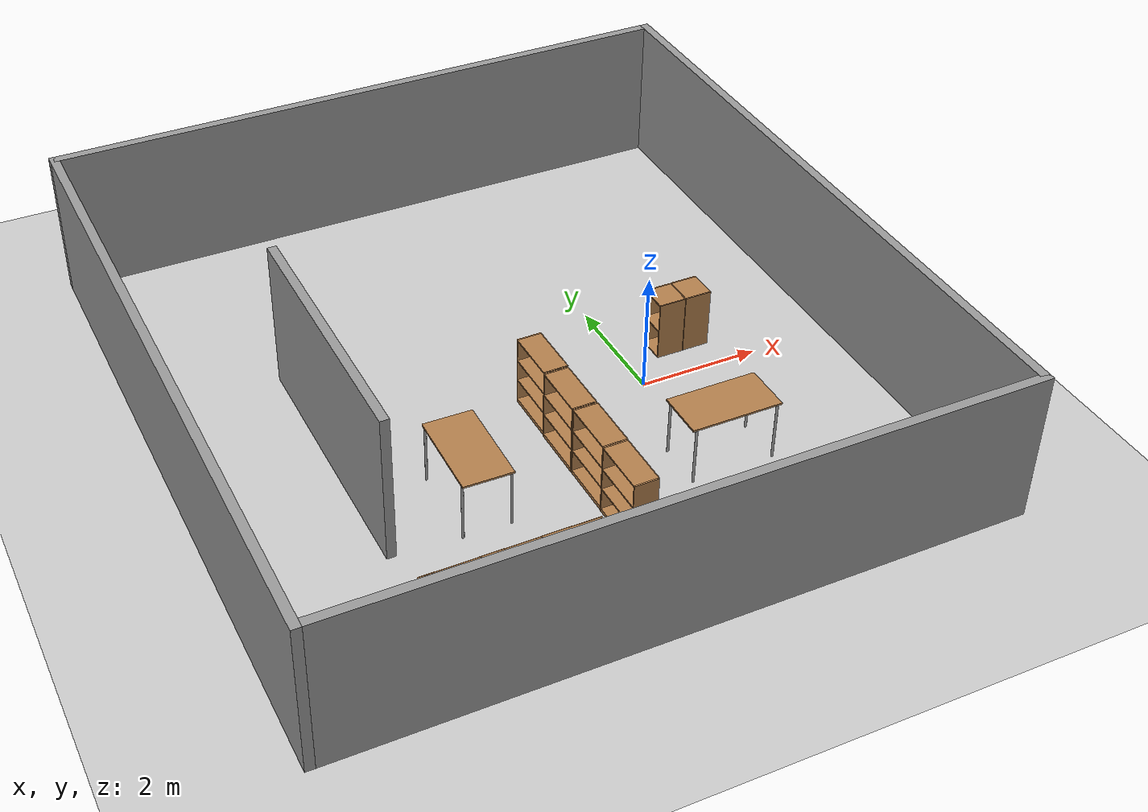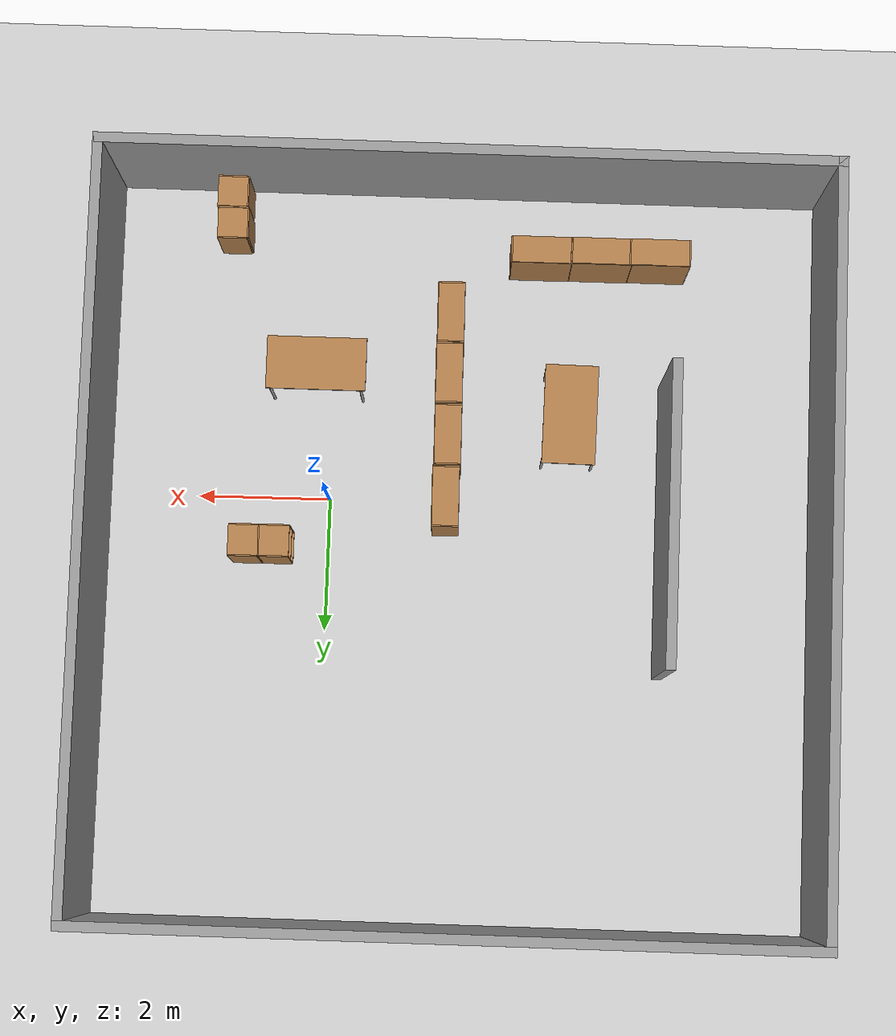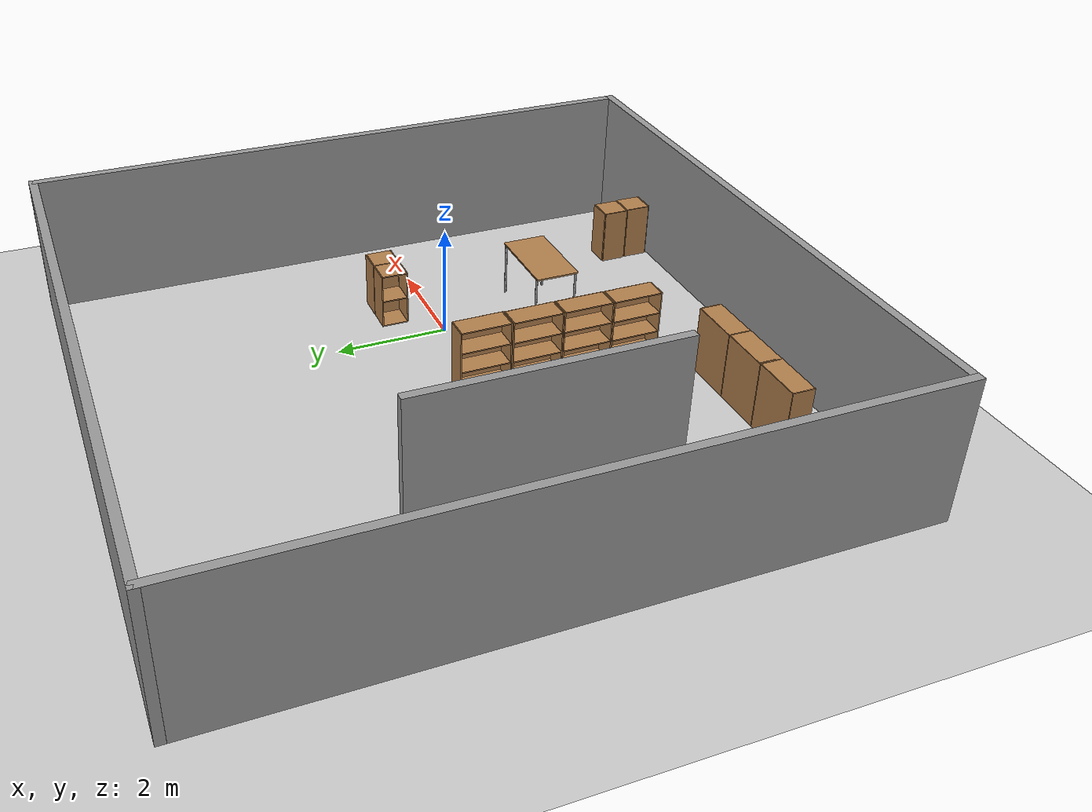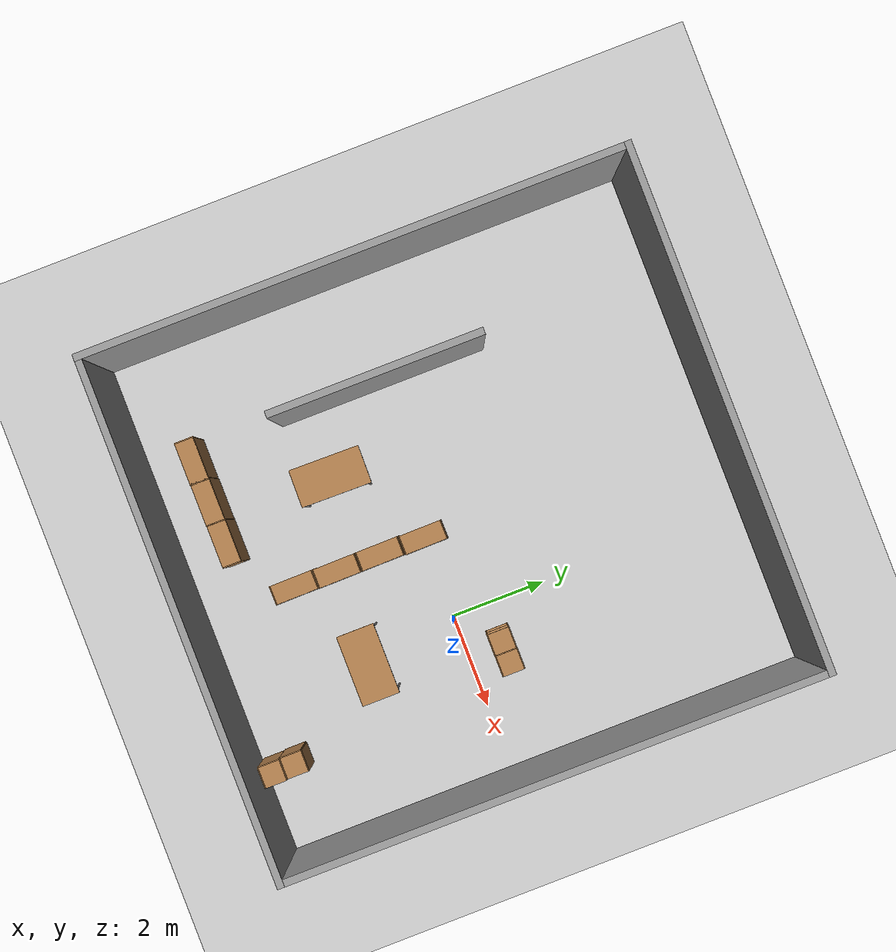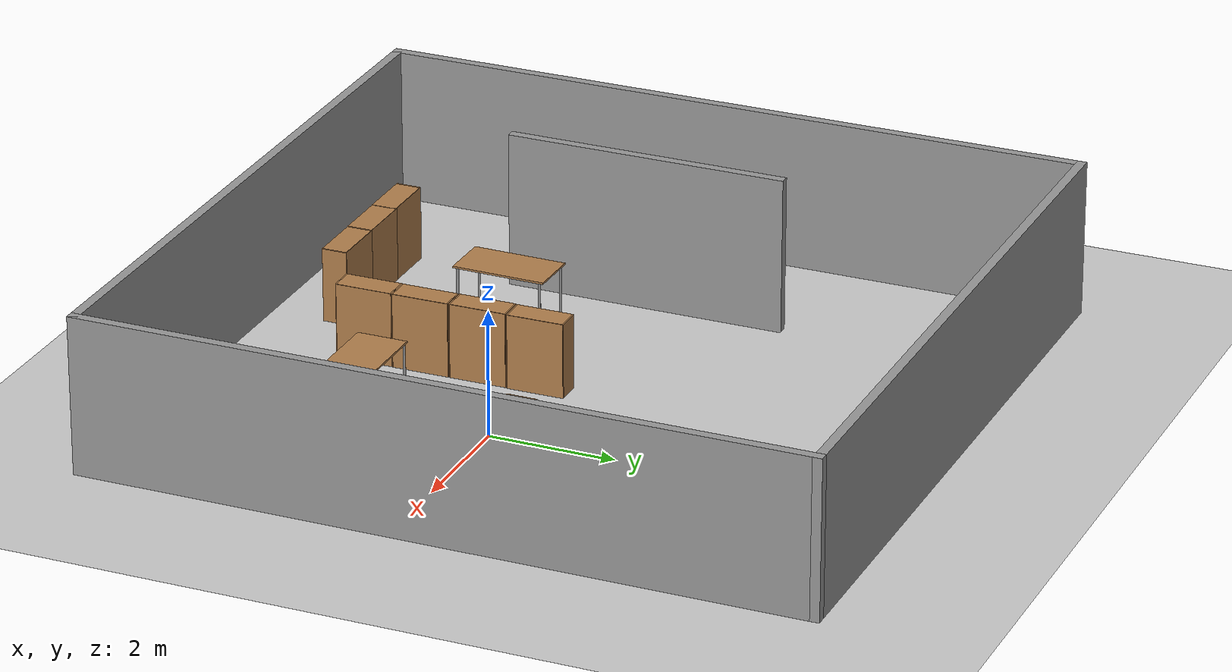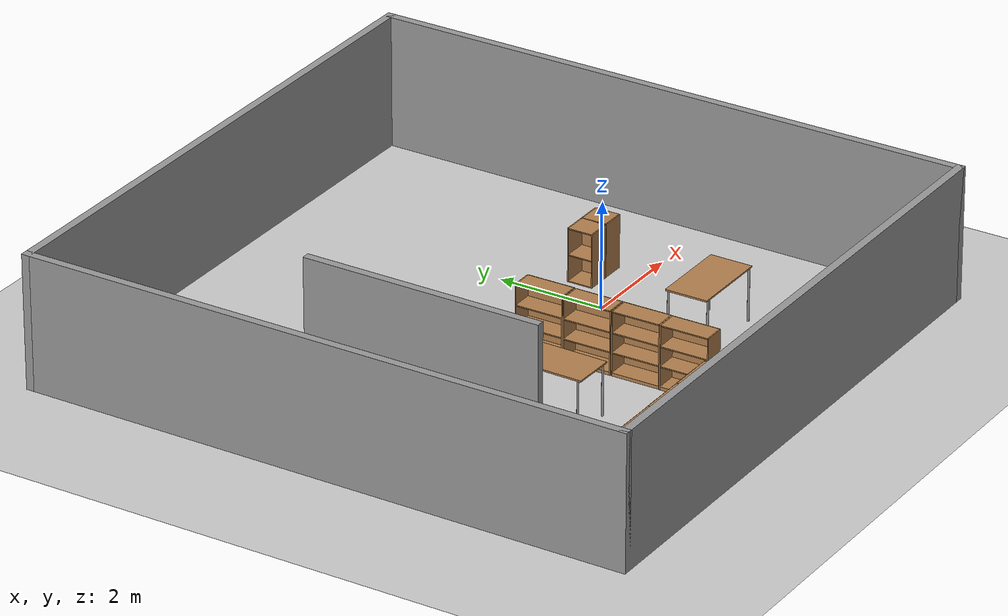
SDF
<sdf version="1.7">
 <world name="default">
  <model name="ground_plane">
   <static>1</static>
   <link name="link">
    <collision name="collision">
     <geometry><plane><normal>0 0 1</normal><size>100 100</size></plane></geometry>
     <surface>
      <contact><collide_bitmask>65535</collide_bitmask></contact>
      <friction><ode><mu>100</mu><mu2>50</mu2></ode></friction>
     </surface>
    </collision>
    <visual name="visual">
     <cast_shadows>0</cast_shadows>
     <geometry><plane><normal>0 0 1</normal><size>100 100</size></plane></geometry>
     <material>
      <script><uri>file://media/materials/scripts/gazebo.material</uri><name>Gazebo/Grey</name></script>
     </material>
    </visual>
   </link>
  </model>
  <model name="BOUNDARY">
   <pose>-1.9849 0.78024 0 0 -0 0</pose>
   <link name="Wall_10">
    <collision name="Wall_10_Collision">
     <geometry><box><size>11 0.15 2.5</size></box></geometry>
     <pose>0 0 1.25 0 -0 0</pose>
    </collision>
    <visual name="Wall_10_Visual">
     <pose>0 0 1.25 0 -0 0</pose>
     <geometry><box><size>11 0.15 2.5</size></box></geometry>
     <material>
      <script><uri>file://media/materials/scripts/gazebo.material</uri><name>Gazebo/Grey</name></script>
      <ambient>1 1 1 1</ambient>
     </material>
     <meta><layer>0</layer></meta>
    </visual>
    <pose>-0 5.675 0 0 -0 3.14159</pose>
   </link>
   <link name="Wall_7">
    <collision name="Wall_7_Collision">
     <geometry><box><size>11.5 0.15 2.5</size></box></geometry>
     <pose>0 0 1.25 0 -0 0</pose>
    </collision>
    <visual name="Wall_7_Visual">
     <pose>0 0 1.25 0 -0 0</pose>
     <geometry><box><size>11.5 0.15 2.5</size></box></geometry>
     <material>
      <script><uri>file://media/materials/scripts/gazebo.material</uri><name>Gazebo/Grey</name></script>
      <ambient>1 1 1 1</ambient>
     </material>
     <meta><layer>0</layer></meta>
    </visual>
    <pose>-5.425 -0 0 0 -0 -1.5708</pose>
   </link>
   <link name="Wall_8">
    <collision name="Wall_8_Collision">
     <geometry><box><size>11 0.15 2.5</size></box></geometry>
     <pose>0 0 1.25 0 -0 0</pose>
    </collision>
    <visual name="Wall_8_Visual">
     <pose>0 0 1.25 0 -0 0</pose>
     <geometry><box><size>11 0.15 2.5</size></box></geometry>
     <material>
      <script><uri>file://media/materials/scripts/gazebo.material</uri><name>Gazebo/Grey</name></script>
      <ambient>1 1 1 1</ambient>
     </material>
     <meta><layer>0</layer></meta>
    </visual>
    <pose>-0 -5.675 0 0 -0 0</pose>
   </link>
   <link name="Wall_9">
    <collision name="Wall_9_Collision">
     <geometry><box><size>11.5 0.15 2.5</size></box></geometry>
     <pose>0 0 1.25 0 -0 0</pose>
    </collision>
    <visual name="Wall_9_Visual">
     <pose>0 0 1.25 0 -0 0</pose>
     <geometry><box><size>11.5 0.15 2.5</size></box></geometry>
     <material>
      <script><uri>file://media/materials/scripts/gazebo.material</uri><name>Gazebo/Grey</name></script>
      <ambient>1 1 1 1</ambient>
     </material>
     <meta><layer>0</layer></meta>
    </visual>
    <pose>5.425 -0 0 0 -0 1.5708</pose>
   </link>
   <static>1</static>
  </model>
  <model name="cabinet_1_clone_1">
   <static>1</static>
   <link name="cabinet_bottom_plate">
    <inertial>
     <pose>0 0 -1 0 -0 0</pose>
     <inertia><ixx>2.05</ixx><ixy>0</ixy><ixz>0</ixz><iyy>2.05</iyy><iyz>0</iyz><izz>2.05</izz></inertia>
     <mass>25</mass>
    </inertial>
    <collision name="cabinet_bottom_plate_geom">
     <pose>0 0 0.01 0 -0 0</pose>
     <geometry><box><size>0.45 0.45 0.02</size></box></geometry>
    </collision>
    <visual name="cabinet_bottom_plate_geom_visual">
     <pose>0 0 0.01 0 -0 0</pose>
     <geometry><box><size>0.45 0.45 0.02</size></box></geometry>
     <material>
      <script><uri>file://media/materials/scripts/gazebo.material</uri><name>Gazebo/Wood</name></script>
     </material>
    </visual>
    <collision name="cabinet_bottom_plate_geom_cabinet_back_plate">
     <pose>0.235 0 0.51 0 -0 0</pose>
     <geometry><box><size>0.02 0.45 1.02</size></box></geometry>
    </collision>
    <visual name="cabinet_bottom_plate_geom_cabinet_back_plate_visual">
     <pose>0.235 0 0.51 0 -0 0</pose>
     <geometry><box><size>0.02 0.45 1.02</size></box></geometry>
     <material>
      <script><uri>file://media/materials/scripts/gazebo.material</uri><name>Gazebo/Wood</name></script>
     </material>
    </visual>
    <collision name="cabinet_bottom_plate_geom_cabinet_left_plate">
     <pose>0 0.235 0.51 0 -0 0</pose>
     <geometry><box><size>0.45 0.02 1.02</size></box></geometry>
    </collision>
    <visual name="cabinet_bottom_plate_geom_cabinet_left_plate_visual">
     <pose>0 0.235 0.51 0 -0 0</pose>
     <geometry><box><size>0.45 0.02 1.02</size></box></geometry>
     <material>
      <script><uri>file://media/materials/scripts/gazebo.material</uri><name>Gazebo/Wood</name></script>
     </material>
    </visual>
    <collision name="cabinet_bottom_plate_geom_cabinet_middle_plate">
     <pose>0 0 0.51 0 -0 0</pose>
     <geometry><box><size>0.45 0.45 0.02</size></box></geometry>
    </collision>
    <visual name="cabinet_bottom_plate_geom_cabinet_middle_plate_visual">
     <pose>0 0 0.51 0 -0 0</pose>
     <geometry><box><size>0.45 0.45 0.02</size></box></geometry>
     <material>
      <script><uri>file://media/materials/scripts/gazebo.material</uri><name>Gazebo/Wood</name></script>
     </material>
    </visual>
    <collision name="cabinet_bottom_plate_geom_cabinet_right_plate">
     <pose>0 -0.235 0.51 0 -0 0</pose>
     <geometry><box><size>0.45 0.02 1.02</size></box></geometry>
    </collision>
    <visual name="cabinet_bottom_plate_geom_cabinet_right_plate_visual">
     <pose>0 -0.235 0.51 0 -0 0</pose>
     <geometry><box><size>0.45 0.02 1.02</size></box></geometry>
     <material>
      <script><uri>file://media/materials/scripts/gazebo.material</uri><name>Gazebo/Wood</name></script>
     </material>
    </visual>
    <collision name="cabinet_bottom_plate_geom_cabinet_top_plate">
     <pose>0 0 1.01 0 -0 0</pose>
     <geometry><box><size>0.45 0.45 0.02</size></box></geometry>
    </collision>
    <visual name="cabinet_bottom_plate_geom_cabinet_top_plate_visual">
     <pose>0 0 1.01 0 -0 0</pose>
     <geometry><box><size>0.45 0.45 0.02</size></box></geometry>
     <material>
      <script><uri>file://media/materials/scripts/gazebo.material</uri><name>Gazebo/Wood</name></script>
     </material>
    </visual>
   </link>
   <pose>0.754546 0.758666 0 0 -0 0</pose>
  </model>
  <model name="cabinet_clone_2_clone_clone_0">
   <static>1</static>
   <link name="cabinet_bottom_plate">
    <inertial>
     <pose>0 0 -1 0 -0 0</pose>
     <inertia><ixx>2.05</ixx><ixy>0</ixy><ixz>0</ixz><iyy>2.05</iyy><iyz>0</iyz><izz>2.05</izz></inertia>
     <mass>25</mass>
    </inertial>
    <collision name="cabinet_bottom_plate_geom">
     <pose>0 0 0.01 0 -0 0</pose>
     <geometry><box><size>0.45 0.45 0.02</size></box></geometry>
    </collision>
    <visual name="cabinet_bottom_plate_geom_visual">
     <pose>0 0 0.01 0 -0 0</pose>
     <geometry><box><size>0.45 0.45 0.02</size></box></geometry>
     <material>
      <script><uri>file://media/materials/scripts/gazebo.material</uri><name>Gazebo/Wood</name></script>
     </material>
    </visual>
    <collision name="cabinet_bottom_plate_geom_cabinet_back_plate">
     <pose>0.235 0 0.51 0 -0 0</pose>
     <geometry><box><size>0.02 0.45 1.02</size></box></geometry>
    </collision>
    <visual name="cabinet_bottom_plate_geom_cabinet_back_plate_visual">
     <pose>0.235 0 0.51 0 -0 0</pose>
     <geometry><box><size>0.02 0.45 1.02</size></box></geometry>
     <material>
      <script><uri>file://media/materials/scripts/gazebo.material</uri><name>Gazebo/Wood</name></script>
     </material>
    </visual>
    <collision name="cabinet_bottom_plate_geom_cabinet_left_plate">
     <pose>0 0.235 0.51 0 -0 0</pose>
     <geometry><box><size>0.45 0.02 1.02</size></box></geometry>
    </collision>
    <visual name="cabinet_bottom_plate_geom_cabinet_left_plate_visual">
     <pose>0 0.235 0.51 0 -0 0</pose>
     <geometry><box><size>0.45 0.02 1.02</size></box></geometry>
     <material>
      <script><uri>file://media/materials/scripts/gazebo.material</uri><name>Gazebo/Wood</name></script>
     </material>
    </visual>
    <collision name="cabinet_bottom_plate_geom_cabinet_middle_plate">
     <pose>0 0 0.51 0 -0 0</pose>
     <geometry><box><size>0.45 0.45 0.02</size></box></geometry>
    </collision>
    <visual name="cabinet_bottom_plate_geom_cabinet_middle_plate_visual">
     <pose>0 0 0.51 0 -0 0</pose>
     <geometry><box><size>0.45 0.45 0.02</size></box></geometry>
     <material>
      <script><uri>file://media/materials/scripts/gazebo.material</uri><name>Gazebo/Wood</name></script>
     </material>
    </visual>
    <collision name="cabinet_bottom_plate_geom_cabinet_right_plate">
     <pose>0 -0.235 0.51 0 -0 0</pose>
     <geometry><box><size>0.45 0.02 1.02</size></box></geometry>
    </collision>
    <visual name="cabinet_bottom_plate_geom_cabinet_right_plate_visual">
     <pose>0 -0.235 0.51 0 -0 0</pose>
     <geometry><box><size>0.45 0.02 1.02</size></box></geometry>
     <material>
      <script><uri>file://media/materials/scripts/gazebo.material</uri><name>Gazebo/Wood</name></script>
     </material>
    </visual>
    <collision name="cabinet_bottom_plate_geom_cabinet_top_plate">
     <pose>0 0 1.01 0 -0 0</pose>
     <geometry><box><size>0.45 0.45 0.02</size></box></geometry>
    </collision>
    <visual name="cabinet_bottom_plate_geom_cabinet_top_plate_visual">
     <pose>0 0 1.01 0 -0 0</pose>
     <geometry><box><size>0.45 0.45 0.02</size></box></geometry>
     <material>
      <script><uri>file://media/materials/scripts/gazebo.material</uri><name>Gazebo/Wood</name></script>
     </material>
    </visual>
   </link>
   <pose>1.21855 0.762349 0 0 -0 3.14114</pose>
  </model>
  <model name="Wall1">
   <pose>-2.57259 0.335098 0 0 -0 0</pose>
   <link name="Wall_7">
    <collision name="Wall_7_Collision">
     <geometry><box><size>4.5 0.15 2.5</size></box></geometry>
     <pose>0 0 1.25 0 -0 0</pose>
    </collision>
    <visual name="Wall_7_Visual">
     <pose>0 0 1.25 0 -0 0</pose>
     <geometry><box><size>4.5 0.15 2.5</size></box></geometry>
     <material>
      <script><uri>file://media/materials/scripts/gazebo.material</uri><name>Gazebo/Grey</name></script>
      <ambient>1 1 1 1</ambient>
     </material>
     <meta><layer>0</layer></meta>
    </visual>
    <pose>-2.49759 0 0 0 -0 -1.5708</pose>
   </link>
   <static>1</static>
  </model>
  <model name="bookshelf_clone_6">
   <static>1</static>
   <link name="link">
    <inertial><mass>1</mass></inertial>
    <collision name="back">
     <pose>0 0.005 0.6 0 -0 0</pose>
     <geometry><box><size>0.9 0.01 1.2</size></box></geometry>
    </collision>
    <visual name="visual1">
     <pose>0 0.005 0.6 0 -0 0</pose>
     <geometry><box><size>0.9 0.01 1.2</size></box></geometry>
     <material>
      <script><uri>file://media/materials/scripts/gazebo.material</uri><name>Gazebo/Wood</name></script>
     </material>
    </visual>
    <collision name="left_side">
     <pose>0.45 -0.195 0.6 0 -0 0</pose>
     <geometry><box><size>0.02 0.4 1.2</size></box></geometry>
    </collision>
    <visual name="visual2">
     <pose>0.45 -0.195 0.6 0 -0 0</pose>
     <geometry><box><size>0.02 0.4 1.2</size></box></geometry>
     <material>
      <script><uri>file://media/materials/scripts/gazebo.material</uri><name>Gazebo/Wood</name></script>
     </material>
    </visual>
    <collision name="right_side">
     <pose>-0.45 -0.195 0.6 0 -0 0</pose>
     <geometry><box><size>0.02 0.4 1.2</size></box></geometry>
    </collision>
    <visual name="visual3">
     <pose>-0.45 -0.195 0.6 0 -0 0</pose>
     <geometry><box><size>0.02 0.4 1.2</size></box></geometry>
     <material>
      <script><uri>file://media/materials/scripts/gazebo.material</uri><name>Gazebo/Wood</name></script>
     </material>
    </visual>
    <collision name="bottom">
     <pose>0 -0.195 0.03 0 -0 0</pose>
     <geometry><box><size>0.88 0.4 0.06</size></box></geometry>
    </collision>
    <visual name="visual4">
     <pose>0 -0.195 0.03 0 -0 0</pose>
     <geometry><box><size>0.88 0.4 0.06</size></box></geometry>
     <material>
      <script><uri>file://media/materials/scripts/gazebo.material</uri><name>Gazebo/Wood</name></script>
     </material>
    </visual>
    <collision name="top">
     <pose>0 -0.195 1.19 0 -0 0</pose>
     <geometry><box><size>0.88 0.4 0.02</size></box></geometry>
    </collision>
    <visual name="visual5">
     <pose>0 -0.195 1.19 0 -0 0</pose>
     <geometry><box><size>0.88 0.4 0.02</size></box></geometry>
     <material>
      <script><uri>file://media/materials/scripts/gazebo.material</uri><name>Gazebo/Wood</name></script>
     </material>
    </visual>
    <collision name="low_shelf">
     <pose>0 -0.195 0.43 0 -0 0</pose>
     <geometry><box><size>0.88 0.4 0.02</size></box></geometry>
    </collision>
    <visual name="visual6">
     <pose>0 -0.195 0.43 0 -0 0</pose>
     <geometry><box><size>0.88 0.4 0.02</size></box></geometry>
     <material>
      <script><uri>file://media/materials/scripts/gazebo.material</uri><name>Gazebo/Wood</name></script>
     </material>
    </visual>
    <collision name="high_shelf">
     <pose>0 -0.195 0.8 0 -0 0</pose>
     <geometry><box><size>0.88 0.4 0.02</size></box></geometry>
    </collision>
    <visual name="visual7">
     <pose>0 -0.195 0.8 0 -0 0</pose>
     <geometry><box><size>0.88 0.4 0.02</size></box></geometry>
     <material>
      <script><uri>file://media/materials/scripts/gazebo.material</uri><name>Gazebo/Wood</name></script>
     </material>
    </visual>
   </link>
   <pose>-1.5862 0.029646 0 0 0 -1.56142</pose>
  </model>
  <model name="bookshelf_clone_6_clone">
   <static>1</static>
   <link name="link">
    <inertial><mass>1</mass></inertial>
    <collision name="back">
     <pose>0 0.005 0.6 0 -0 0</pose>
     <geometry><box><size>0.9 0.01 1.2</size></box></geometry>
    </collision>
    <visual name="visual1">
     <pose>0 0.005 0.6 0 -0 0</pose>
     <geometry><box><size>0.9 0.01 1.2</size></box></geometry>
     <material>
      <script><uri>file://media/materials/scripts/gazebo.material</uri><name>Gazebo/Wood</name></script>
     </material>
    </visual>
    <collision name="left_side">
     <pose>0.45 -0.195 0.6 0 -0 0</pose>
     <geometry><box><size>0.02 0.4 1.2</size></box></geometry>
    </collision>
    <visual name="visual2">
     <pose>0.45 -0.195 0.6 0 -0 0</pose>
     <geometry><box><size>0.02 0.4 1.2</size></box></geometry>
     <material>
      <script><uri>file://media/materials/scripts/gazebo.material</uri><name>Gazebo/Wood</name></script>
     </material>
    </visual>
    <collision name="right_side">
     <pose>-0.45 -0.195 0.6 0 -0 0</pose>
     <geometry><box><size>0.02 0.4 1.2</size></box></geometry>
    </collision>
    <visual name="visual3">
     <pose>-0.45 -0.195 0.6 0 -0 0</pose>
     <geometry><box><size>0.02 0.4 1.2</size></box></geometry>
     <material>
      <script><uri>file://media/materials/scripts/gazebo.material</uri><name>Gazebo/Wood</name></script>
     </material>
    </visual>
    <collision name="bottom">
     <pose>0 -0.195 0.03 0 -0 0</pose>
     <geometry><box><size>0.88 0.4 0.06</size></box></geometry>
    </collision>
    <visual name="visual4">
     <pose>0 -0.195 0.03 0 -0 0</pose>
     <geometry><box><size>0.88 0.4 0.06</size></box></geometry>
     <material>
      <script><uri>file://media/materials/scripts/gazebo.material</uri><name>Gazebo/Wood</name></script>
     </material>
    </visual>
    <collision name="top">
     <pose>0 -0.195 1.19 0 -0 0</pose>
     <geometry><box><size>0.88 0.4 0.02</size></box></geometry>
    </collision>
    <visual name="visual5">
     <pose>0 -0.195 1.19 0 -0 0</pose>
     <geometry><box><size>0.88 0.4 0.02</size></box></geometry>
     <material>
      <script><uri>file://media/materials/scripts/gazebo.material</uri><name>Gazebo/Wood</name></script>
     </material>
    </visual>
    <collision name="low_shelf">
     <pose>0 -0.195 0.43 0 -0 0</pose>
     <geometry><box><size>0.88 0.4 0.02</size></box></geometry>
    </collision>
    <visual name="visual6">
     <pose>0 -0.195 0.43 0 -0 0</pose>
     <geometry><box><size>0.88 0.4 0.02</size></box></geometry>
     <material>
      <script><uri>file://media/materials/scripts/gazebo.material</uri><name>Gazebo/Wood</name></script>
     </material>
    </visual>
    <collision name="high_shelf">
     <pose>0 -0.195 0.8 0 -0 0</pose>
     <geometry><box><size>0.88 0.4 0.02</size></box></geometry>
    </collision>
    <visual name="visual7">
     <pose>0 -0.195 0.8 0 -0 0</pose>
     <geometry><box><size>0.88 0.4 0.02</size></box></geometry>
     <material>
      <script><uri>file://media/materials/scripts/gazebo.material</uri><name>Gazebo/Wood</name></script>
     </material>
    </visual>
   </link>
   <pose>-1.59056 -0.903487 0 0 0 -1.56142</pose>
  </model>
  <model name="bookshelf_clone_6_clone_0">
   <static>1</static>
   <link name="link">
    <inertial><mass>1</mass></inertial>
    <collision name="back">
     <pose>0 0.005 0.6 0 -0 0</pose>
     <geometry><box><size>0.9 0.01 1.2</size></box></geometry>
    </collision>
    <visual name="visual1">
     <pose>0 0.005 0.6 0 -0 0</pose>
     <geometry><box><size>0.9 0.01 1.2</size></box></geometry>
     <material>
      <script><uri>file://media/materials/scripts/gazebo.material</uri><name>Gazebo/Wood</name></script>
     </material>
    </visual>
    <collision name="left_side">
     <pose>0.45 -0.195 0.6 0 -0 0</pose>
     <geometry><box><size>0.02 0.4 1.2</size></box></geometry>
    </collision>
    <visual name="visual2">
     <pose>0.45 -0.195 0.6 0 -0 0</pose>
     <geometry><box><size>0.02 0.4 1.2</size></box></geometry>
     <material>
      <script><uri>file://media/materials/scripts/gazebo.material</uri><name>Gazebo/Wood</name></script>
     </material>
    </visual>
    <collision name="right_side">
     <pose>-0.45 -0.195 0.6 0 -0 0</pose>
     <geometry><box><size>0.02 0.4 1.2</size></box></geometry>
    </collision>
    <visual name="visual3">
     <pose>-0.45 -0.195 0.6 0 -0 0</pose>
     <geometry><box><size>0.02 0.4 1.2</size></box></geometry>
     <material>
      <script><uri>file://media/materials/scripts/gazebo.material</uri><name>Gazebo/Wood</name></script>
     </material>
    </visual>
    <collision name="bottom">
     <pose>0 -0.195 0.03 0 -0 0</pose>
     <geometry><box><size>0.88 0.4 0.06</size></box></geometry>
    </collision>
    <visual name="visual4">
     <pose>0 -0.195 0.03 0 -0 0</pose>
     <geometry><box><size>0.88 0.4 0.06</size></box></geometry>
     <material>
      <script><uri>file://media/materials/scripts/gazebo.material</uri><name>Gazebo/Wood</name></script>
     </material>
    </visual>
    <collision name="top">
     <pose>0 -0.195 1.19 0 -0 0</pose>
     <geometry><box><size>0.88 0.4 0.02</size></box></geometry>
    </collision>
    <visual name="visual5">
     <pose>0 -0.195 1.19 0 -0 0</pose>
     <geometry><box><size>0.88 0.4 0.02</size></box></geometry>
     <material>
      <script><uri>file://media/materials/scripts/gazebo.material</uri><name>Gazebo/Wood</name></script>
     </material>
    </visual>
    <collision name="low_shelf">
     <pose>0 -0.195 0.43 0 -0 0</pose>
     <geometry><box><size>0.88 0.4 0.02</size></box></geometry>
    </collision>
    <visual name="visual6">
     <pose>0 -0.195 0.43 0 -0 0</pose>
     <geometry><box><size>0.88 0.4 0.02</size></box></geometry>
     <material>
      <script><uri>file://media/materials/scripts/gazebo.material</uri><name>Gazebo/Wood</name></script>
     </material>
    </visual>
    <collision name="high_shelf">
     <pose>0 -0.195 0.8 0 -0 0</pose>
     <geometry><box><size>0.88 0.4 0.02</size></box></geometry>
    </collision>
    <visual name="visual7">
     <pose>0 -0.195 0.8 0 -0 0</pose>
     <geometry><box><size>0.88 0.4 0.02</size></box></geometry>
     <material>
      <script><uri>file://media/materials/scripts/gazebo.material</uri><name>Gazebo/Wood</name></script>
     </material>
    </visual>
   </link>
   <pose>-1.58007 -1.83542 0 0 0 -1.56142</pose>
  </model>
  <model name="bookshelf_clone_6_clone_1">
   <static>1</static>
   <link name="link">
    <inertial><mass>1</mass></inertial>
    <collision name="back">
     <pose>0 0.005 0.6 0 -0 0</pose>
     <geometry><box><size>0.9 0.01 1.2</size></box></geometry>
    </collision>
    <visual name="visual1">
     <pose>0 0.005 0.6 0 -0 0</pose>
     <geometry><box><size>0.9 0.01 1.2</size></box></geometry>
     <material>
      <script><uri>file://media/materials/scripts/gazebo.material</uri><name>Gazebo/Wood</name></script>
     </material>
    </visual>
    <collision name="left_side">
     <pose>0.45 -0.195 0.6 0 -0 0</pose>
     <geometry><box><size>0.02 0.4 1.2</size></box></geometry>
    </collision>
    <visual name="visual2">
     <pose>0.45 -0.195 0.6 0 -0 0</pose>
     <geometry><box><size>0.02 0.4 1.2</size></box></geometry>
     <material>
      <script><uri>file://media/materials/scripts/gazebo.material</uri><name>Gazebo/Wood</name></script>
     </material>
    </visual>
    <collision name="right_side">
     <pose>-0.45 -0.195 0.6 0 -0 0</pose>
     <geometry><box><size>0.02 0.4 1.2</size></box></geometry>
    </collision>
    <visual name="visual3">
     <pose>-0.45 -0.195 0.6 0 -0 0</pose>
     <geometry><box><size>0.02 0.4 1.2</size></box></geometry>
     <material>
      <script><uri>file://media/materials/scripts/gazebo.material</uri><name>Gazebo/Wood</name></script>
     </material>
    </visual>
    <collision name="bottom">
     <pose>0 -0.195 0.03 0 -0 0</pose>
     <geometry><box><size>0.88 0.4 0.06</size></box></geometry>
    </collision>
    <visual name="visual4">
     <pose>0 -0.195 0.03 0 -0 0</pose>
     <geometry><box><size>0.88 0.4 0.06</size></box></geometry>
     <material>
      <script><uri>file://media/materials/scripts/gazebo.material</uri><name>Gazebo/Wood</name></script>
     </material>
    </visual>
    <collision name="top">
     <pose>0 -0.195 1.19 0 -0 0</pose>
     <geometry><box><size>0.88 0.4 0.02</size></box></geometry>
    </collision>
    <visual name="visual5">
     <pose>0 -0.195 1.19 0 -0 0</pose>
     <geometry><box><size>0.88 0.4 0.02</size></box></geometry>
     <material>
      <script><uri>file://media/materials/scripts/gazebo.material</uri><name>Gazebo/Wood</name></script>
     </material>
    </visual>
    <collision name="low_shelf">
     <pose>0 -0.195 0.43 0 -0 0</pose>
     <geometry><box><size>0.88 0.4 0.02</size></box></geometry>
    </collision>
    <visual name="visual6">
     <pose>0 -0.195 0.43 0 -0 0</pose>
     <geometry><box><size>0.88 0.4 0.02</size></box></geometry>
     <material>
      <script><uri>file://media/materials/scripts/gazebo.material</uri><name>Gazebo/Wood</name></script>
     </material>
    </visual>
    <collision name="high_shelf">
     <pose>0 -0.195 0.8 0 -0 0</pose>
     <geometry><box><size>0.88 0.4 0.02</size></box></geometry>
    </collision>
    <visual name="visual7">
     <pose>0 -0.195 0.8 0 -0 0</pose>
     <geometry><box><size>0.88 0.4 0.02</size></box></geometry>
     <material>
      <script><uri>file://media/materials/scripts/gazebo.material</uri><name>Gazebo/Wood</name></script>
     </material>
    </visual>
   </link>
   <pose>-1.57824 -2.75818 0 0 0 -1.56142</pose>
  </model>
  <model name="cabinet_clone_2_clone_clone_0_clone">
   <static>1</static>
   <link name="cabinet_bottom_plate">
    <inertial>
     <pose>0 0 -1 0 -0 0</pose>
     <inertia><ixx>2.05</ixx><ixy>0</ixy><ixz>0</ixz><iyy>2.05</iyy><iyz>0</iyz><izz>2.05</izz></inertia>
     <mass>25</mass>
    </inertial>
    <collision name="cabinet_bottom_plate_geom">
     <pose>0 0 0.01 0 -0 0</pose>
     <geometry><box><size>0.45 0.45 0.02</size></box></geometry>
    </collision>
    <visual name="cabinet_bottom_plate_geom_visual">
     <pose>0 0 0.01 0 -0 0</pose>
     <geometry><box><size>0.45 0.45 0.02</size></box></geometry>
     <material>
      <script><uri>file://media/materials/scripts/gazebo.material</uri><name>Gazebo/Wood</name></script>
     </material>
    </visual>
    <collision name="cabinet_bottom_plate_geom_cabinet_back_plate">
     <pose>0.235 0 0.51 0 -0 0</pose>
     <geometry><box><size>0.02 0.45 1.02</size></box></geometry>
    </collision>
    <visual name="cabinet_bottom_plate_geom_cabinet_back_plate_visual">
     <pose>0.235 0 0.51 0 -0 0</pose>
     <geometry><box><size>0.02 0.45 1.02</size></box></geometry>
     <material>
      <script><uri>file://media/materials/scripts/gazebo.material</uri><name>Gazebo/Wood</name></script>
     </material>
    </visual>
    <collision name="cabinet_bottom_plate_geom_cabinet_left_plate">
     <pose>0 0.235 0.51 0 -0 0</pose>
     <geometry><box><size>0.45 0.02 1.02</size></box></geometry>
    </collision>
    <visual name="cabinet_bottom_plate_geom_cabinet_left_plate_visual">
     <pose>0 0.235 0.51 0 -0 0</pose>
     <geometry><box><size>0.45 0.02 1.02</size></box></geometry>
     <material>
      <script><uri>file://media/materials/scripts/gazebo.material</uri><name>Gazebo/Wood</name></script>
     </material>
    </visual>
    <collision name="cabinet_bottom_plate_geom_cabinet_middle_plate">
     <pose>0 0 0.51 0 -0 0</pose>
     <geometry><box><size>0.45 0.45 0.02</size></box></geometry>
    </collision>
    <visual name="cabinet_bottom_plate_geom_cabinet_middle_plate_visual">
     <pose>0 0 0.51 0 -0 0</pose>
     <geometry><box><size>0.45 0.45 0.02</size></box></geometry>
     <material>
      <script><uri>file://media/materials/scripts/gazebo.material</uri><name>Gazebo/Wood</name></script>
     </material>
    </visual>
    <collision name="cabinet_bottom_plate_geom_cabinet_right_plate">
     <pose>0 -0.235 0.51 0 -0 0</pose>
     <geometry><box><size>0.45 0.02 1.02</size></box></geometry>
    </collision>
    <visual name="cabinet_bottom_plate_geom_cabinet_right_plate_visual">
     <pose>0 -0.235 0.51 0 -0 0</pose>
     <geometry><box><size>0.45 0.02 1.02</size></box></geometry>
     <material>
      <script><uri>file://media/materials/scripts/gazebo.material</uri><name>Gazebo/Wood</name></script>
     </material>
    </visual>
    <collision name="cabinet_bottom_plate_geom_cabinet_top_plate">
     <pose>0 0 1.01 0 -0 0</pose>
     <geometry><box><size>0.45 0.45 0.02</size></box></geometry>
    </collision>
    <visual name="cabinet_bottom_plate_geom_cabinet_top_plate_visual">
     <pose>0 0 1.01 0 -0 0</pose>
     <geometry><box><size>0.45 0.45 0.02</size></box></geometry>
     <material>
      <script><uri>file://media/materials/scripts/gazebo.material</uri><name>Gazebo/Wood</name></script>
     </material>
    </visual>
   </link>
   <pose>1.5977 -4.54714 0 0 -0 3.14114</pose>
  </model>
  <model name="cabinet_clone_2_clone_clone_0_clone_clone">
   <static>1</static>
   <link name="cabinet_bottom_plate">
    <inertial>
     <pose>0 0 -1 0 -0 0</pose>
     <inertia><ixx>2.05</ixx><ixy>0</ixy><ixz>0</ixz><iyy>2.05</iyy><iyz>0</iyz><izz>2.05</izz></inertia>
     <mass>25</mass>
    </inertial>
    <collision name="cabinet_bottom_plate_geom">
     <pose>0 0 0.01 0 -0 0</pose>
     <geometry><box><size>0.45 0.45 0.02</size></box></geometry>
    </collision>
    <visual name="cabinet_bottom_plate_geom_visual">
     <pose>0 0 0.01 0 -0 0</pose>
     <geometry><box><size>0.45 0.45 0.02</size></box></geometry>
     <material>
      <script><uri>file://media/materials/scripts/gazebo.material</uri><name>Gazebo/Wood</name></script>
     </material>
    </visual>
    <collision name="cabinet_bottom_plate_geom_cabinet_back_plate">
     <pose>0.235 0 0.51 0 -0 0</pose>
     <geometry><box><size>0.02 0.45 1.02</size></box></geometry>
    </collision>
    <visual name="cabinet_bottom_plate_geom_cabinet_back_plate_visual">
     <pose>0.235 0 0.51 0 -0 0</pose>
     <geometry><box><size>0.02 0.45 1.02</size></box></geometry>
     <material>
      <script><uri>file://media/materials/scripts/gazebo.material</uri><name>Gazebo/Wood</name></script>
     </material>
    </visual>
    <collision name="cabinet_bottom_plate_geom_cabinet_left_plate">
     <pose>0 0.235 0.51 0 -0 0</pose>
     <geometry><box><size>0.45 0.02 1.02</size></box></geometry>
    </collision>
    <visual name="cabinet_bottom_plate_geom_cabinet_left_plate_visual">
     <pose>0 0.235 0.51 0 -0 0</pose>
     <geometry><box><size>0.45 0.02 1.02</size></box></geometry>
     <material>
      <script><uri>file://media/materials/scripts/gazebo.material</uri><name>Gazebo/Wood</name></script>
     </material>
    </visual>
    <collision name="cabinet_bottom_plate_geom_cabinet_middle_plate">
     <pose>0 0 0.51 0 -0 0</pose>
     <geometry><box><size>0.45 0.45 0.02</size></box></geometry>
    </collision>
    <visual name="cabinet_bottom_plate_geom_cabinet_middle_plate_visual">
     <pose>0 0 0.51 0 -0 0</pose>
     <geometry><box><size>0.45 0.45 0.02</size></box></geometry>
     <material>
      <script><uri>file://media/materials/scripts/gazebo.material</uri><name>Gazebo/Wood</name></script>
     </material>
    </visual>
    <collision name="cabinet_bottom_plate_geom_cabinet_right_plate">
     <pose>0 -0.235 0.51 0 -0 0</pose>
     <geometry><box><size>0.45 0.02 1.02</size></box></geometry>
    </collision>
    <visual name="cabinet_bottom_plate_geom_cabinet_right_plate_visual">
     <pose>0 -0.235 0.51 0 -0 0</pose>
     <geometry><box><size>0.45 0.02 1.02</size></box></geometry>
     <material>
      <script><uri>file://media/materials/scripts/gazebo.material</uri><name>Gazebo/Wood</name></script>
     </material>
    </visual>
    <collision name="cabinet_bottom_plate_geom_cabinet_top_plate">
     <pose>0 0 1.01 0 -0 0</pose>
     <geometry><box><size>0.45 0.45 0.02</size></box></geometry>
    </collision>
    <visual name="cabinet_bottom_plate_geom_cabinet_top_plate_visual">
     <pose>0 0 1.01 0 -0 0</pose>
     <geometry><box><size>0.45 0.45 0.02</size></box></geometry>
     <material>
      <script><uri>file://media/materials/scripts/gazebo.material</uri><name>Gazebo/Wood</name></script>
     </material>
    </visual>
   </link>
   <pose>1.58073 -4.06658 0 0 -0 3.14114</pose>
  </model>
  <model name="table">
   <static>1</static>
   <link name="link">
    <collision name="surface">
     <pose>0 0 1 0 -0 0</pose>
     <geometry><box><size>1.5 0.8 0.03</size></box></geometry>
     <surface><friction><ode><mu>0.6</mu><mu2>0.6</mu2></ode></friction></surface>
    </collision>
    <visual name="visual1">
     <pose>0 0 1 0 -0 0</pose>
     <geometry><box><size>1.5 0.8 0.03</size></box></geometry>
     <material>
      <script><uri>file://media/materials/scripts/gazebo.material</uri><name>Gazebo/Wood</name></script>
     </material>
    </visual>
    <collision name="front_left_leg">
     <pose>0.68 0.38 0.5 0 -0 0</pose>
     <geometry><cylinder><radius>0.02</radius><length>1</length></cylinder></geometry>
    </collision>
    <visual name="front_left_leg">
     <pose>0.68 0.38 0.5 0 -0 0</pose>
     <geometry><cylinder><radius>0.02</radius><length>1</length></cylinder></geometry>
     <material>
      <script><uri>file://media/materials/scripts/gazebo.material</uri><name>Gazebo/Grey</name></script>
     </material>
    </visual>
    <collision name="front_right_leg">
     <pose>0.68 -0.38 0.5 0 -0 0</pose>
     <geometry><cylinder><radius>0.02</radius><length>1</length></cylinder></geometry>
    </collision>
    <visual name="front_right_leg">
     <pose>0.68 -0.38 0.5 0 -0 0</pose>
     <geometry><cylinder><radius>0.02</radius><length>1</length></cylinder></geometry>
     <material>
      <script><uri>file://media/materials/scripts/gazebo.material</uri><name>Gazebo/Grey</name></script>
     </material>
    </visual>
    <collision name="back_right_leg">
     <pose>-0.68 -0.38 0.5 0 -0 0</pose>
     <geometry><cylinder><radius>0.02</radius><length>1</length></cylinder></geometry>
    </collision>
    <visual name="back_right_leg">
     <pose>-0.68 -0.38 0.5 0 -0 0</pose>
     <geometry><cylinder><radius>0.02</radius><length>1</length></cylinder></geometry>
     <material>
      <script><uri>file://media/materials/scripts/gazebo.material</uri><name>Gazebo/Grey</name></script>
     </material>
    </visual>
    <collision name="back_left_leg">
     <pose>-0.68 0.38 0.5 0 -0 0</pose>
     <geometry><cylinder><radius>0.02</radius><length>1</length></cylinder></geometry>
    </collision>
    <visual name="back_left_leg">
     <pose>-0.68 0.38 0.5 0 -0 0</pose>
     <geometry><cylinder><radius>0.02</radius><length>1</length></cylinder></geometry>
     <material>
      <script><uri>file://media/materials/scripts/gazebo.material</uri><name>Gazebo/Grey</name></script>
     </material>
    </visual>
   </link>
   <pose>0.229803 -1.94455 0 0 -0 0</pose>
  </model>
  <model name="table_0">
   <static>1</static>
   <link name="link">
    <collision name="surface">
     <pose>0 0 1 0 -0 0</pose>
     <geometry><box><size>1.5 0.8 0.03</size></box></geometry>
     <surface><friction><ode><mu>0.6</mu><mu2>0.6</mu2></ode></friction></surface>
    </collision>
    <visual name="visual1">
     <pose>0 0 1 0 -0 0</pose>
     <geometry><box><size>1.5 0.8 0.03</size></box></geometry>
     <material>
      <script><uri>file://media/materials/scripts/gazebo.material</uri><name>Gazebo/Wood</name></script>
     </material>
    </visual>
    <collision name="front_left_leg">
     <pose>0.68 0.38 0.5 0 -0 0</pose>
     <geometry><cylinder><radius>0.02</radius><length>1</length></cylinder></geometry>
    </collision>
    <visual name="front_left_leg">
     <pose>0.68 0.38 0.5 0 -0 0</pose>
     <geometry><cylinder><radius>0.02</radius><length>1</length></cylinder></geometry>
     <material>
      <script><uri>file://media/materials/scripts/gazebo.material</uri><name>Gazebo/Grey</name></script>
     </material>
    </visual>
    <collision name="front_right_leg">
     <pose>0.68 -0.38 0.5 0 -0 0</pose>
     <geometry><cylinder><radius>0.02</radius><length>1</length></cylinder></geometry>
    </collision>
    <visual name="front_right_leg">
     <pose>0.68 -0.38 0.5 0 -0 0</pose>
     <geometry><cylinder><radius>0.02</radius><length>1</length></cylinder></geometry>
     <material>
      <script><uri>file://media/materials/scripts/gazebo.material</uri><name>Gazebo/Grey</name></script>
     </material>
    </visual>
    <collision name="back_right_leg">
     <pose>-0.68 -0.38 0.5 0 -0 0</pose>
     <geometry><cylinder><radius>0.02</radius><length>1</length></cylinder></geometry>
    </collision>
    <visual name="back_right_leg">
     <pose>-0.68 -0.38 0.5 0 -0 0</pose>
     <geometry><cylinder><radius>0.02</radius><length>1</length></cylinder></geometry>
     <material>
      <script><uri>file://media/materials/scripts/gazebo.material</uri><name>Gazebo/Grey</name></script>
     </material>
    </visual>
    <collision name="back_left_leg">
     <pose>-0.68 0.38 0.5 0 -0 0</pose>
     <geometry><cylinder><radius>0.02</radius><length>1</length></cylinder></geometry>
    </collision>
    <visual name="back_left_leg">
     <pose>-0.68 0.38 0.5 0 -0 0</pose>
     <geometry><cylinder><radius>0.02</radius><length>1</length></cylinder></geometry>
     <material>
      <script><uri>file://media/materials/scripts/gazebo.material</uri><name>Gazebo/Grey</name></script>
     </material>
    </visual>
   </link>
   <pose>-3.6074 -1.2925 0 0 0 -1.58554</pose>
  </model>
  <model name="bookshelf_clone_7">
   <static>1</static>
   <link name="link">
    <inertial><mass>1</mass></inertial>
    <collision name="back">
     <pose>0 0.005 0.6 0 -0 0</pose>
     <geometry><box><size>0.9 0.01 1.2</size></box></geometry>
    </collision>
    <visual name="visual1">
     <pose>0 0.005 0.6 0 -0 0</pose>
     <geometry><box><size>0.9 0.01 1.2</size></box></geometry>
     <material>
      <script><uri>file://media/materials/scripts/gazebo.material</uri><name>Gazebo/Wood</name></script>
     </material>
    </visual>
    <collision name="left_side">
     <pose>0.45 -0.195 0.6 0 -0 0</pose>
     <geometry><box><size>0.02 0.4 1.2</size></box></geometry>
    </collision>
    <visual name="visual2">
     <pose>0.45 -0.195 0.6 0 -0 0</pose>
     <geometry><box><size>0.02 0.4 1.2</size></box></geometry>
     <material>
      <script><uri>file://media/materials/scripts/gazebo.material</uri><name>Gazebo/Wood</name></script>
     </material>
    </visual>
    <collision name="right_side">
     <pose>-0.45 -0.195 0.6 0 -0 0</pose>
     <geometry><box><size>0.02 0.4 1.2</size></box></geometry>
    </collision>
    <visual name="visual3">
     <pose>-0.45 -0.195 0.6 0 -0 0</pose>
     <geometry><box><size>0.02 0.4 1.2</size></box></geometry>
     <material>
      <script><uri>file://media/materials/scripts/gazebo.material</uri><name>Gazebo/Wood</name></script>
     </material>
    </visual>
    <collision name="bottom">
     <pose>0 -0.195 0.03 0 -0 0</pose>
     <geometry><box><size>0.88 0.4 0.06</size></box></geometry>
    </collision>
    <visual name="visual4">
     <pose>0 -0.195 0.03 0 -0 0</pose>
     <geometry><box><size>0.88 0.4 0.06</size></box></geometry>
     <material>
      <script><uri>file://media/materials/scripts/gazebo.material</uri><name>Gazebo/Wood</name></script>
     </material>
    </visual>
    <collision name="top">
     <pose>0 -0.195 1.19 0 -0 0</pose>
     <geometry><box><size>0.88 0.4 0.02</size></box></geometry>
    </collision>
    <visual name="visual5">
     <pose>0 -0.195 1.19 0 -0 0</pose>
     <geometry><box><size>0.88 0.4 0.02</size></box></geometry>
     <material>
      <script><uri>file://media/materials/scripts/gazebo.material</uri><name>Gazebo/Wood</name></script>
     </material>
    </visual>
    <collision name="low_shelf">
     <pose>0 -0.195 0.43 0 -0 0</pose>
     <geometry><box><size>0.88 0.4 0.02</size></box></geometry>
    </collision>
    <visual name="visual6">
     <pose>0 -0.195 0.43 0 -0 0</pose>
     <geometry><box><size>0.88 0.4 0.02</size></box></geometry>
     <material>
      <script><uri>file://media/materials/scripts/gazebo.material</uri><name>Gazebo/Wood</name></script>
     </material>
    </visual>
    <collision name="high_shelf">
     <pose>0 -0.195 0.8 0 -0 0</pose>
     <geometry><box><size>0.88 0.4 0.02</size></box></geometry>
    </collision>
    <visual name="visual7">
     <pose>0 -0.195 0.8 0 -0 0</pose>
     <geometry><box><size>0.88 0.4 0.02</size></box></geometry>
     <material>
      <script><uri>file://media/materials/scripts/gazebo.material</uri><name>Gazebo/Wood</name></script>
     </material>
    </visual>
   </link>
   <pose>-4.88528 -3.57556 0 0 -0 0</pose>
  </model>
  <model name="bookshelf_clone_8">
   <static>1</static>
   <link name="link">
    <inertial><mass>1</mass></inertial>
    <collision name="back">
     <pose>0 0.005 0.6 0 -0 0</pose>
     <geometry><box><size>0.9 0.01 1.2</size></box></geometry>
    </collision>
    <visual name="visual1">
     <pose>0 0.005 0.6 0 -0 0</pose>
     <geometry><box><size>0.9 0.01 1.2</size></box></geometry>
     <material>
      <script><uri>file://media/materials/scripts/gazebo.material</uri><name>Gazebo/Wood</name></script>
     </material>
    </visual>
    <collision name="left_side">
     <pose>0.45 -0.195 0.6 0 -0 0</pose>
     <geometry><box><size>0.02 0.4 1.2</size></box></geometry>
    </collision>
    <visual name="visual2">
     <pose>0.45 -0.195 0.6 0 -0 0</pose>
     <geometry><box><size>0.02 0.4 1.2</size></box></geometry>
     <material>
      <script><uri>file://media/materials/scripts/gazebo.material</uri><name>Gazebo/Wood</name></script>
     </material>
    </visual>
    <collision name="right_side">
     <pose>-0.45 -0.195 0.6 0 -0 0</pose>
     <geometry><box><size>0.02 0.4 1.2</size></box></geometry>
    </collision>
    <visual name="visual3">
     <pose>-0.45 -0.195 0.6 0 -0 0</pose>
     <geometry><box><size>0.02 0.4 1.2</size></box></geometry>
     <material>
      <script><uri>file://media/materials/scripts/gazebo.material</uri><name>Gazebo/Wood</name></script>
     </material>
    </visual>
    <collision name="bottom">
     <pose>0 -0.195 0.03 0 -0 0</pose>
     <geometry><box><size>0.88 0.4 0.06</size></box></geometry>
    </collision>
    <visual name="visual4">
     <pose>0 -0.195 0.03 0 -0 0</pose>
     <geometry><box><size>0.88 0.4 0.06</size></box></geometry>
     <material>
      <script><uri>file://media/materials/scripts/gazebo.material</uri><name>Gazebo/Wood</name></script>
     </material>
    </visual>
    <collision name="top">
     <pose>0 -0.195 1.19 0 -0 0</pose>
     <geometry><box><size>0.88 0.4 0.02</size></box></geometry>
    </collision>
    <visual name="visual5">
     <pose>0 -0.195 1.19 0 -0 0</pose>
     <geometry><box><size>0.88 0.4 0.02</size></box></geometry>
     <material>
      <script><uri>file://media/materials/scripts/gazebo.material</uri><name>Gazebo/Wood</name></script>
     </material>
    </visual>
    <collision name="low_shelf">
     <pose>0 -0.195 0.43 0 -0 0</pose>
     <geometry><box><size>0.88 0.4 0.02</size></box></geometry>
    </collision>
    <visual name="visual6">
     <pose>0 -0.195 0.43 0 -0 0</pose>
     <geometry><box><size>0.88 0.4 0.02</size></box></geometry>
     <material>
      <script><uri>file://media/materials/scripts/gazebo.material</uri><name>Gazebo/Wood</name></script>
     </material>
    </visual>
    <collision name="high_shelf">
     <pose>0 -0.195 0.8 0 -0 0</pose>
     <geometry><box><size>0.88 0.4 0.02</size></box></geometry>
    </collision>
    <visual name="visual7">
     <pose>0 -0.195 0.8 0 -0 0</pose>
     <geometry><box><size>0.88 0.4 0.02</size></box></geometry>
     <material>
      <script><uri>file://media/materials/scripts/gazebo.material</uri><name>Gazebo/Wood</name></script>
     </material>
    </visual>
   </link>
   <pose>-4.00729 -3.56927 0 0 -0 0</pose>
  </model>
  <model name="bookshelf_clone_9">
   <static>1</static>
   <link name="link">
    <inertial><mass>1</mass></inertial>
    <collision name="back">
     <pose>0 0.005 0.6 0 -0 0</pose>
     <geometry><box><size>0.9 0.01 1.2</size></box></geometry>
    </collision>
    <visual name="visual1">
     <pose>0 0.005 0.6 0 -0 0</pose>
     <geometry><box><size>0.9 0.01 1.2</size></box></geometry>
     <material>
      <script><uri>file://media/materials/scripts/gazebo.material</uri><name>Gazebo/Wood</name></script>
     </material>
    </visual>
    <collision name="left_side">
     <pose>0.45 -0.195 0.6 0 -0 0</pose>
     <geometry><box><size>0.02 0.4 1.2</size></box></geometry>
    </collision>
    <visual name="visual2">
     <pose>0.45 -0.195 0.6 0 -0 0</pose>
     <geometry><box><size>0.02 0.4 1.2</size></box></geometry>
     <material>
      <script><uri>file://media/materials/scripts/gazebo.material</uri><name>Gazebo/Wood</name></script>
     </material>
    </visual>
    <collision name="right_side">
     <pose>-0.45 -0.195 0.6 0 -0 0</pose>
     <geometry><box><size>0.02 0.4 1.2</size></box></geometry>
    </collision>
    <visual name="visual3">
     <pose>-0.45 -0.195 0.6 0 -0 0</pose>
     <geometry><box><size>0.02 0.4 1.2</size></box></geometry>
     <material>
      <script><uri>file://media/materials/scripts/gazebo.material</uri><name>Gazebo/Wood</name></script>
     </material>
    </visual>
    <collision name="bottom">
     <pose>0 -0.195 0.03 0 -0 0</pose>
     <geometry><box><size>0.88 0.4 0.06</size></box></geometry>
    </collision>
    <visual name="visual4">
     <pose>0 -0.195 0.03 0 -0 0</pose>
     <geometry><box><size>0.88 0.4 0.06</size></box></geometry>
     <material>
      <script><uri>file://media/materials/scripts/gazebo.material</uri><name>Gazebo/Wood</name></script>
     </material>
    </visual>
    <collision name="top">
     <pose>0 -0.195 1.19 0 -0 0</pose>
     <geometry><box><size>0.88 0.4 0.02</size></box></geometry>
    </collision>
    <visual name="visual5">
     <pose>0 -0.195 1.19 0 -0 0</pose>
     <geometry><box><size>0.88 0.4 0.02</size></box></geometry>
     <material>
      <script><uri>file://media/materials/scripts/gazebo.material</uri><name>Gazebo/Wood</name></script>
     </material>
    </visual>
    <collision name="low_shelf">
     <pose>0 -0.195 0.43 0 -0 0</pose>
     <geometry><box><size>0.88 0.4 0.02</size></box></geometry>
    </collision>
    <visual name="visual6">
     <pose>0 -0.195 0.43 0 -0 0</pose>
     <geometry><box><size>0.88 0.4 0.02</size></box></geometry>
     <material>
      <script><uri>file://media/materials/scripts/gazebo.material</uri><name>Gazebo/Wood</name></script>
     </material>
    </visual>
    <collision name="high_shelf">
     <pose>0 -0.195 0.8 0 -0 0</pose>
     <geometry><box><size>0.88 0.4 0.02</size></box></geometry>
    </collision>
    <visual name="visual7">
     <pose>0 -0.195 0.8 0 -0 0</pose>
     <geometry><box><size>0.88 0.4 0.02</size></box></geometry>
     <material>
      <script><uri>file://media/materials/scripts/gazebo.material</uri><name>Gazebo/Wood</name></script>
     </material>
    </visual>
   </link>
   <pose>-3.10357 -3.56282 0 0 -0 0</pose>
  </model>
 </world>
</sdf>
